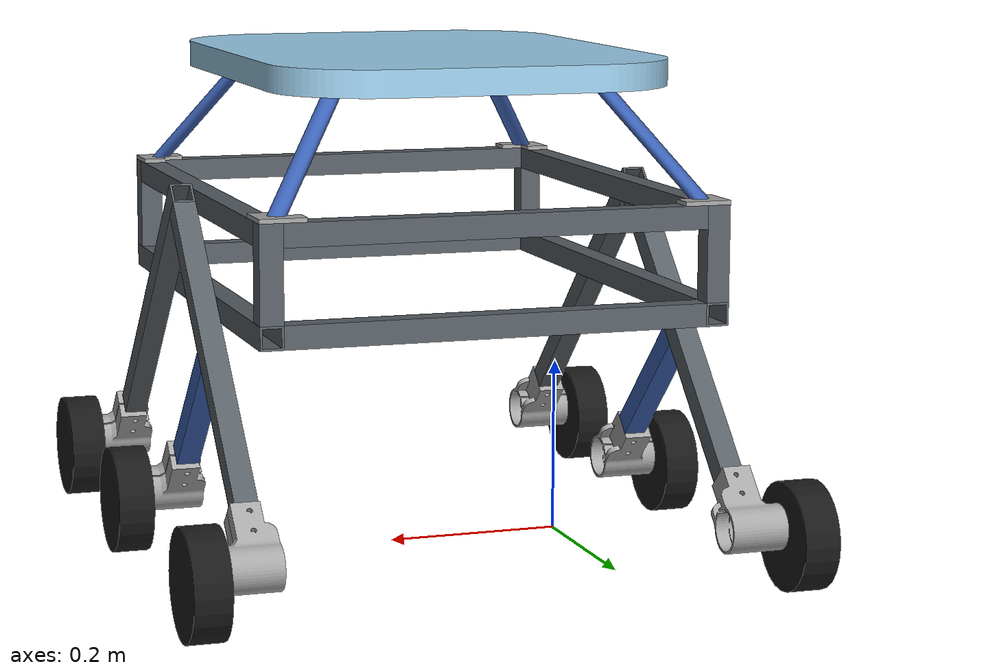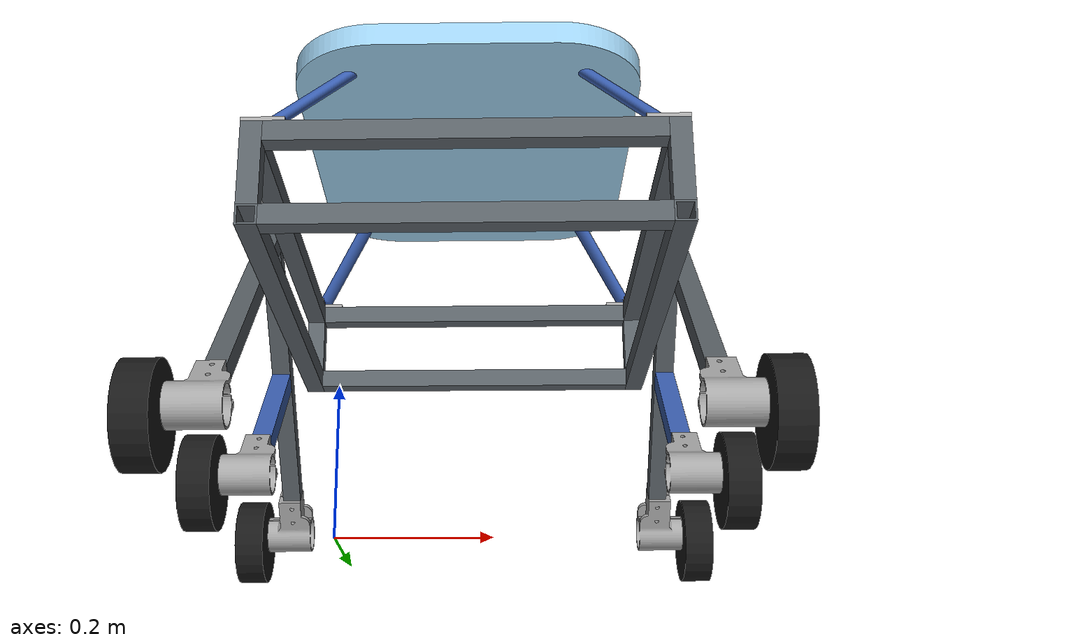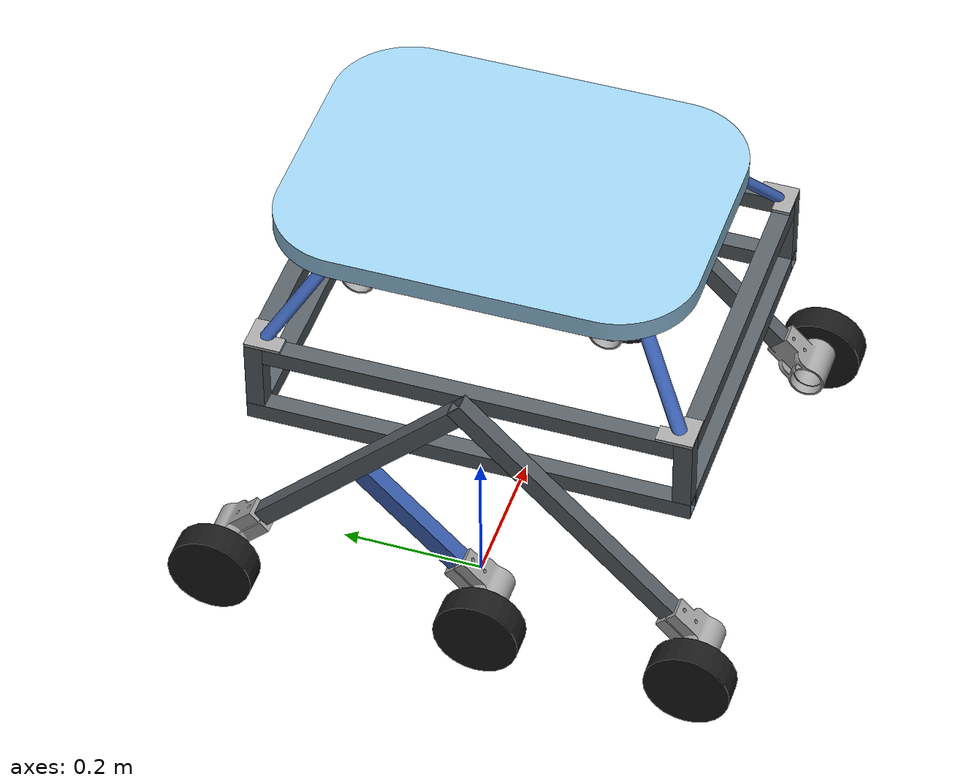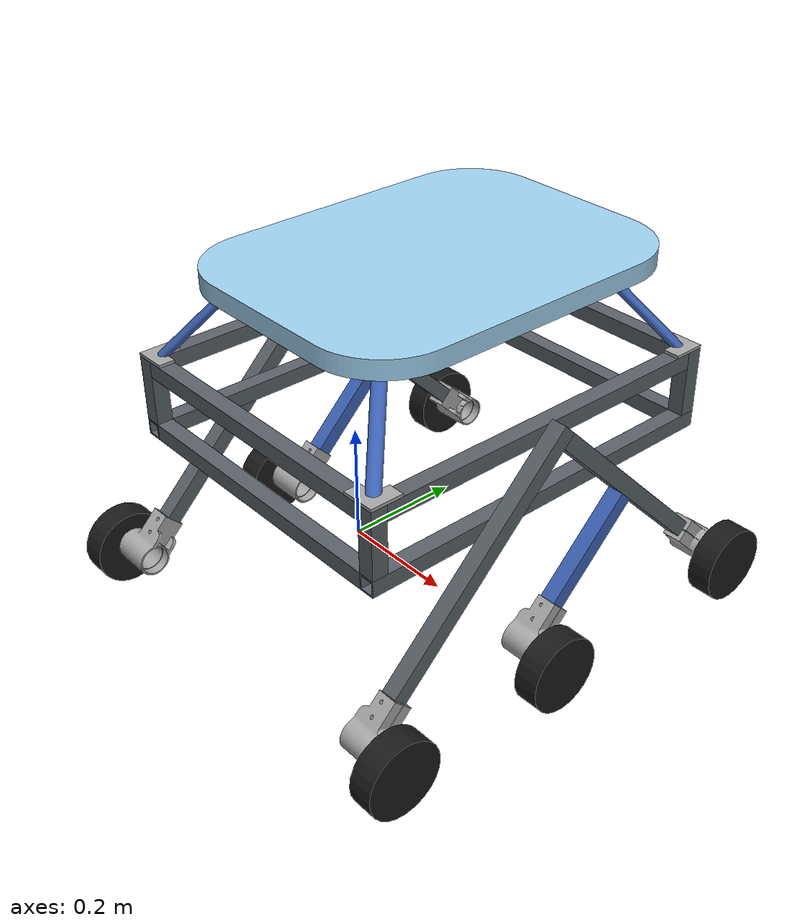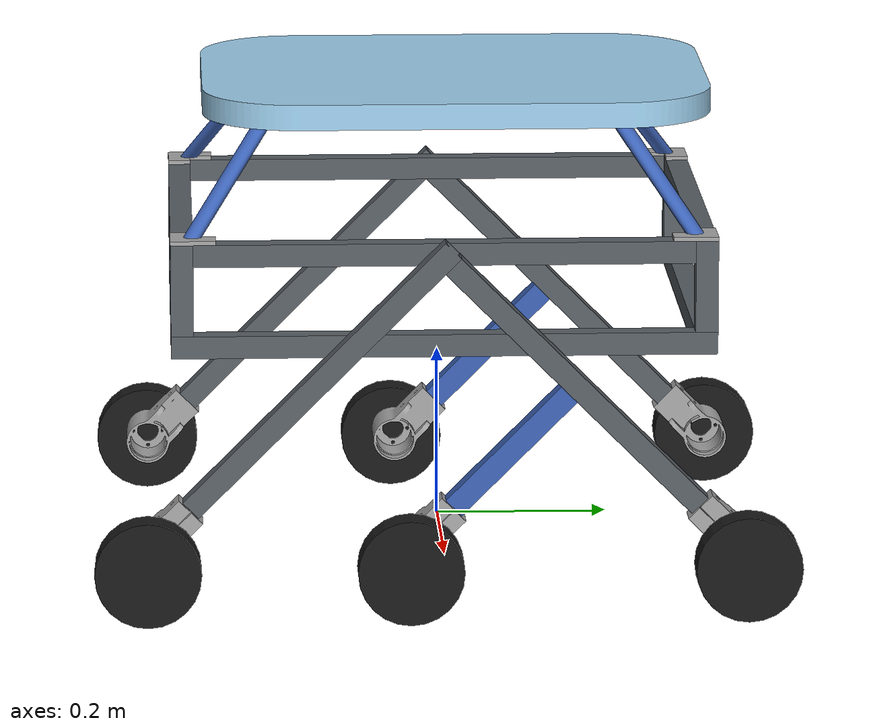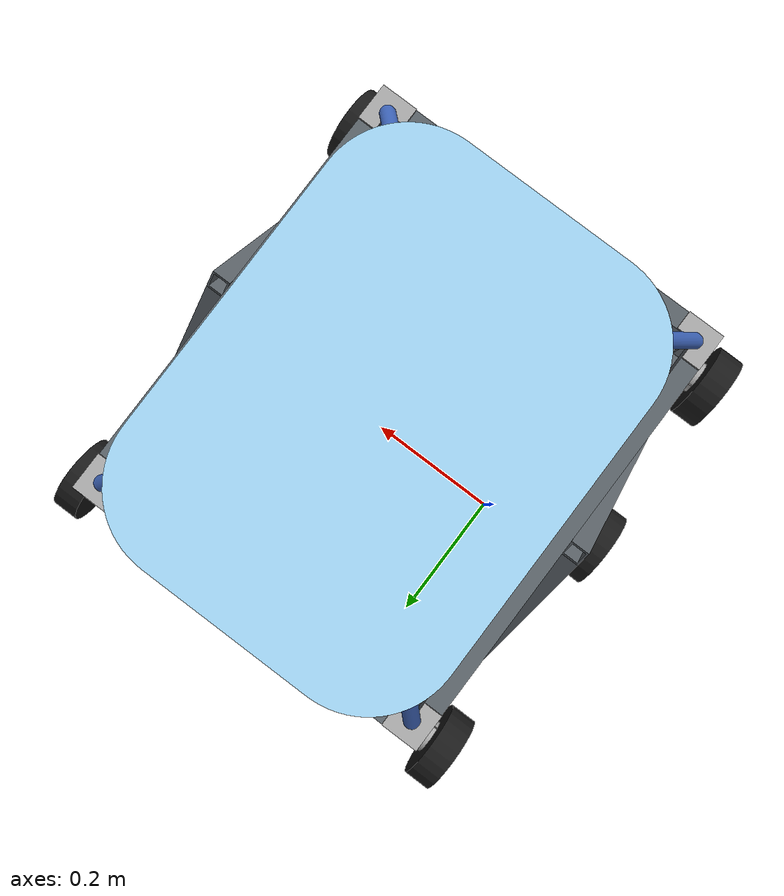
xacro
<?xml version="1.0"?>
<robot name="larry_robot"
  xmlns:xacro="http://www.ros.org/wiki/xacro">

  <xacro:arg name="use_sim" default="true"/>

  <xacro:property name="use_sim_val" value="$(arg use_sim)" />

  <xacro:include filename="larry_core.xacro" />
  <xacro:include filename="larry_wheels.xacro" />
  <xacro:include filename="larry.ros2_control.xacro" />

  <xacro:larry_core />

  <!-- Approximated values -->
  <xacro:build_wheel prefix="front_left" x="-0.16" y="-0.345" z="-0.35" />
  <xacro:build_wheel prefix="front_right" x="0.5" y="-0.345" z="-0.35" />

  <xacro:build_wheel prefix="mid_left" x="-0.16" y="-0.05" z="-0.35" />
  <xacro:build_wheel prefix="mid_right" x="0.5" y="-0.05" z="-0.35" />

  <xacro:build_wheel prefix="rear_left" x="-0.16" y="0.33" z="-0.35" />
  <xacro:build_wheel prefix="rear_right" x="0.5" y="0.33" z="-0.35" />

  <xacro:larry_ros2_control use_sim="${use_sim_val}" />
</robot>

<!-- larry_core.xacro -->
<robot xmlns:xacro="http://www.ros.org/wiki/xacro">
    <xacro:macro name="larry_core">

        <link name="base_link"/>

        <joint name="base_joint" type="fixed">
            <parent link="base_link"/>
            <child link="part_1"/>
            <origin xyz="0 0 0.41" rpy="0 0 0"/>
        </joint>

        <!-- Link part_1 -->
        <link name="part_1">
            <inertial>
                <origin xyz="0 0 0" rpy="0 0 0"/>
                <mass value="1e-09"/>
                <inertia ixx="1e-09" ixy="0" ixz="0" iyy="1e-09" iyz="0" izz="1e-09"/>
            </inertial>
            <!-- Part part_3 -->
            <visual>
                <origin xyz="-0.0658541 -0.0691416 -0.0314545" rpy="0 -0 -0"/>
                <geometry>
                    <mesh filename="package://larry_description/meshes/part_3.stl"/>
                </geometry>
                <material name="part_3_material">
                    <color rgba="0.34902 0.376471 0.4 1"/>
                </material>
            </visual>
            <collision>
                <origin xyz="-0.0658541 -0.0691416 -0.0314545" rpy="0 -0 -0"/>
                <geometry>
                    <mesh filename="package://larry_description/meshes/part_3.stl"/>
                </geometry>
            </collision>
            <!-- Part part_3_2 -->
            <visual>
                <origin xyz="-0.0063048 -0.0830358 -0.105757" rpy="0 0 -0"/>
                <geometry>
                    <mesh filename="package://larry_description/meshes/part_3__2.stl"/>
                </geometry>
                <material name="part_3_2_material">
                    <color rgba="0.231373 0.380392 0.705882 1"/>
                </material>
            </visual>
            <collision>
                <origin xyz="-0.0063048 -0.0830358 -0.105757" rpy="0 0 -0"/>
                <geometry>
                    <mesh filename="package://larry_description/meshes/part_3__2.stl"/>
                </geometry>
            </collision>
            <!-- Part part_1 -->
            <visual>
                <origin xyz="0.533445 -0.0830358 -0.105757" rpy="0 0 -0"/>
                <geometry>
                    <mesh filename="package://larry_description/meshes/part_1.stl"/>
                </geometry>
                <material name="part_1_material">
                    <color rgba="0.647059 0.647059 0.647059 1"/>
                </material>
            </visual>
            <collision>
                <origin xyz="0.533445 -0.0830358 -0.105757" rpy="0 0 -0"/>
                <geometry>
                    <mesh filename="package://larry_description/meshes/part_1.stl"/>
                </geometry>
            </collision>
            <!-- Part part_1_1 -->
            <visual>
                <origin xyz="-0.0658541 -0.0691416 -0.0314545" rpy="0 0 -0"/>
                <geometry>
                    <mesh filename="package://larry_description/meshes/part_1_1.stl"/>
                </geometry>
                <material name="part_1_1_material">
                    <color rgba="0.34902 0.376471 0.4 1"/>
                </material>
            </visual>
            <collision>
                <origin xyz="-0.0658541 -0.0691416 -0.0314545" rpy="0 0 -0"/>
                <geometry>
                    <mesh filename="package://larry_description/meshes/part_1_1.stl"/>
                </geometry>
            </collision>
            <!-- Part part_2_1 -->
            <visual>
                <origin xyz="-0.0658541 -0.0691416 -0.0314545" rpy="0 0 -0"/>
                <geometry>
                    <mesh filename="package://larry_description/meshes/part_2_1.stl"/>
                </geometry>
                <material name="part_2_1_material">
                    <color rgba="0.34902 0.376471 0.4 1"/>
                </material>
            </visual>
            <collision>
                <origin xyz="-0.0658541 -0.0691416 -0.0314545" rpy="0 0 -0"/>
                <geometry>
                    <mesh filename="package://larry_description/meshes/part_2_1.stl"/>
                </geometry>
            </collision>
            <!-- Part part_1_2 -->
            <visual>
                <origin xyz="-0.0063048 -0.0830358 -0.105757" rpy="0 0 -0"/>
                <geometry>
                    <mesh filename="package://larry_description/meshes/part_1__2.stl"/>
                </geometry>
                <material name="part_1_2_material">
                    <color rgba="0.34902 0.376471 0.4 1"/>
                </material>
            </visual>
            <collision>
                <origin xyz="-0.0063048 -0.0830358 -0.105757" rpy="0 0 -0"/>
                <geometry>
                    <mesh filename="package://larry_description/meshes/part_1__2.stl"/>
                </geometry>
            </collision>
            <!-- Part part_2_3 -->
            <visual>
                <origin xyz="-0.0658541 -0.0691416 -0.0314545" rpy="0 0 -0"/>
                <geometry>
                    <mesh filename="package://larry_description/meshes/part_2_3.stl"/>
                </geometry>
                <material name="part_2_3_material">
                    <color rgba="0.34902 0.376471 0.4 1"/>
                </material>
            </visual>
            <collision>
                <origin xyz="-0.0658541 -0.0691416 -0.0314545" rpy="0 0 -0"/>
                <geometry>
                    <mesh filename="package://larry_description/meshes/part_2_3.stl"/>
                </geometry>
            </collision>
            <!-- Part part_2 -->
            <visual>
                <origin xyz="-0.0063048 -0.0830358 -0.105757" rpy="0 0 -0"/>
                <geometry>
                    <mesh filename="package://larry_description/meshes/part_2.stl"/>
                </geometry>
                <material name="part_2_material">
                    <color rgba="0.34902 0.376471 0.4 1"/>
                </material>
            </visual>
            <collision>
                <origin xyz="-0.0063048 -0.0830358 -0.105757" rpy="0 0 -0"/>
                <geometry>
                    <mesh filename="package://larry_description/meshes/part_2.stl"/>
                </geometry>
            </collision>
            <!-- Part part_4 -->
            <visual>
                <origin xyz="-0.0658541 -0.0691416 -0.0314545" rpy="0 0 -0"/>
                <geometry>
                    <mesh filename="package://larry_description/meshes/part_4.stl"/>
                </geometry>
                <material name="part_4_material">
                    <color rgba="0.34902 0.376471 0.4 1"/>
                </material>
            </visual>
            <collision>
                <origin xyz="-0.0658541 -0.0691416 -0.0314545" rpy="0 0 -0"/>
                <geometry>
                    <mesh filename="package://larry_description/meshes/part_4.stl"/>
                </geometry>
            </collision>
            <!-- Part part_3_3 -->
            <visual>
                <origin xyz="0.533445 -0.0830358 -0.105757" rpy="0 0 -0"/>
                <geometry>
                    <mesh filename="package://larry_description/meshes/part_3__2.stl"/>
                </geometry>
                <material name="part_3_3_material">
                    <color rgba="0.231373 0.380392 0.705882 1"/>
                </material>
            </visual>
            <collision>
                <origin xyz="0.533445 -0.0830358 -0.105757" rpy="0 0 -0"/>
                <geometry>
                    <mesh filename="package://larry_description/meshes/part_3__2.stl"/>
                </geometry>
            </collision>
            <!-- Part part_1_3 -->
            <visual>
                <origin xyz="-0.190799 0.185764 -0.374556" rpy="1.5708 0 3.14159"/>
                <geometry>
                    <mesh filename="package://larry_description/meshes/part_1.stl"/>
                </geometry>
                <material name="part_1_3_material">
                    <color rgba="0.647059 0.647059 0.647059 1"/>
                </material>
            </visual>
            <collision>
                <origin xyz="-0.190799 0.185764 -0.374556" rpy="1.5708 0 3.14159"/>
                <geometry>
                    <mesh filename="package://larry_description/meshes/part_1.stl"/>
                </geometry>
            </collision>
            <!-- Part part_1_2 -->
            <visual>
                <origin xyz="0.533445 -0.0830358 -0.105757" rpy="0 0 -0"/>
                <geometry>
                    <mesh filename="package://larry_description/meshes/part_1_2.stl"/>
                </geometry>
                <material name="part_1_2_material">
                    <color rgba="0.647059 0.647059 0.647059 1"/>
                </material>
            </visual>
            <collision>
                <origin xyz="0.533445 -0.0830358 -0.105757" rpy="0 0 -0"/>
                <geometry>
                    <mesh filename="package://larry_description/meshes/part_1_2.stl"/>
                </geometry>
            </collision>
            <!-- Part part_3_4 -->
            <visual>
                <origin xyz="0.403098 0.248145 0.00849795" rpy="0 -0 1.5708"/>
                <geometry>
                    <mesh filename="package://larry_description/meshes/part_3__3.stl"/>
                </geometry>
                <material name="part_3_4_material">
                    <color rgba="0.231373 0.380392 0.705882 1"/>
                </material>
            </visual>
            <collision>
                <origin xyz="0.403098 0.248145 0.00849795" rpy="0 -0 1.5708"/>
                <geometry>
                    <mesh filename="package://larry_description/meshes/part_3__3.stl"/>
                </geometry>
            </collision>
            <!-- Part part_2_2 -->
            <visual>
                <origin xyz="0.403098 0.248145 0.00849795" rpy="0 -0 1.5708"/>
                <geometry>
                    <mesh filename="package://larry_description/meshes/part_2__2.stl"/>
                </geometry>
                <material name="part_2_2_material">
                    <color rgba="0.647059 0.647059 0.647059 1"/>
                </material>
            </visual>
            <collision>
                <origin xyz="0.403098 0.248145 0.00849795" rpy="0 -0 1.5708"/>
                <geometry>
                    <mesh filename="package://larry_description/meshes/part_2__2.stl"/>
                </geometry>
            </collision>
            <!-- Part part_1_1_2 -->
            <visual>
                <origin xyz="0.533445 -0.0830358 -0.105757" rpy="0 0 0"/>
                <geometry>
                    <mesh filename="package://larry_description/meshes/part_1_1__2.stl"/>
                </geometry>
                <material name="part_1_1_2_material">
                    <color rgba="0.647059 0.647059 0.647059 1"/>
                </material>
            </visual>
            <collision>
                <origin xyz="0.533445 -0.0830358 -0.105757" rpy="0 0 0"/>
                <geometry>
                    <mesh filename="package://larry_description/meshes/part_1_1__2.stl"/>
                </geometry>
            </collision>
            <!-- Part part_3_5 -->
            <visual>
                <origin xyz="0.377698 -0.291605 0.00849795" rpy="0 -0 0"/>
                <geometry>
                    <mesh filename="package://larry_description/meshes/part_3__3.stl"/>
                </geometry>
                <material name="part_3_5_material">
                    <color rgba="0.231373 0.380392 0.705882 1"/>
                </material>
            </visual>
            <collision>
                <origin xyz="0.377698 -0.291605 0.00849795" rpy="0 -0 0"/>
                <geometry>
                    <mesh filename="package://larry_description/meshes/part_3__3.stl"/>
                </geometry>
            </collision>
            <!-- Part part_2_3 -->
            <visual>
                <origin xyz="-0.0658541 -0.0691416 -0.0314545" rpy="0 0 -0"/>
                <geometry>
                    <mesh filename="package://larry_description/meshes/part_2__3.stl"/>
                </geometry>
                <material name="part_2_3_material">
                    <color rgba="0.34902 0.376471 0.4 1"/>
                </material>
            </visual>
            <collision>
                <origin xyz="-0.0658541 -0.0691416 -0.0314545" rpy="0 0 -0"/>
                <geometry>
                    <mesh filename="package://larry_description/meshes/part_2__3.stl"/>
                </geometry>
            </collision>
            <!-- Part part_1_4 -->
            <visual>
                <origin xyz="-0.0478 0.523595 0.130935" rpy="0 0 -0"/>
                <geometry>
                    <mesh filename="package://larry_description/meshes/part_1__3.stl"/>
                </geometry>
                <material name="part_1_4_material">
                    <color rgba="0.615686 0.811765 0.929412 1"/>
                </material>
            </visual>
            <collision>
                <origin xyz="-0.0478 0.523595 0.130935" rpy="0 0 -0"/>
                <geometry>
                    <mesh filename="package://larry_description/meshes/part_1__3.stl"/>
                </geometry>
            </collision>
            <!-- Part part_2_4 -->
            <visual>
                <origin xyz="0.377698 -0.291605 0.00849795" rpy="0 0 -0"/>
                <geometry>
                    <mesh filename="package://larry_description/meshes/part_2__2.stl"/>
                </geometry>
                <material name="part_2_4_material">
                    <color rgba="0.647059 0.647059 0.647059 1"/>
                </material>
            </visual>
            <collision>
                <origin xyz="0.377698 -0.291605 0.00849795" rpy="0 0 -0"/>
                <geometry>
                    <mesh filename="package://larry_description/meshes/part_2__2.stl"/>
                </geometry>
            </collision>
            <!-- Part part_2_5 -->
            <visual>
                <origin xyz="0.533445 -0.0830358 -0.105757" rpy="0 0 -0"/>
                <geometry>
                    <mesh filename="package://larry_description/meshes/part_2.stl"/>
                </geometry>
                <material name="part_2_5_material">
                    <color rgba="0.34902 0.376471 0.4 1"/>
                </material>
            </visual>
            <collision>
                <origin xyz="0.533445 -0.0830358 -0.105757" rpy="0 0 -0"/>
                <geometry>
                    <mesh filename="package://larry_description/meshes/part_2.stl"/>
                </geometry>
            </collision>
            <!-- Part part_2_6 -->
            <visual>
                <origin xyz="-0.035052 0.273545 0.00849795" rpy="-0 -0 3.14159"/>
                <geometry>
                    <mesh filename="package://larry_description/meshes/part_2__2.stl"/>
                </geometry>
                <material name="part_2_6_material">
                    <color rgba="0.647059 0.647059 0.647059 1"/>
                </material>
            </visual>
            <collision>
                <origin xyz="-0.035052 0.273545 0.00849795" rpy="-0 -0 3.14159"/>
                <geometry>
                    <mesh filename="package://larry_description/meshes/part_2__2.stl"/>
                </geometry>
            </collision>
            <!-- Part part_3_2 -->
            <visual>
                <origin xyz="-0.0658541 -0.0691416 -0.0314545" rpy="0 -0 -0"/>
                <geometry>
                    <mesh filename="package://larry_description/meshes/part_3_2.stl"/>
                </geometry>
                <material name="part_3_2_material">
                    <color rgba="0.34902 0.376471 0.4 1"/>
                </material>
            </visual>
            <collision>
                <origin xyz="-0.0658541 -0.0691416 -0.0314545" rpy="0 -0 -0"/>
                <geometry>
                    <mesh filename="package://larry_description/meshes/part_3_2.stl"/>
                </geometry>
            </collision>
            <!-- Part part_1_2_2 -->
            <visual>
                <origin xyz="-0.190799 -0.110585 -0.0782078" rpy="1.5708 0 3.14159"/>
                <geometry>
                    <mesh filename="package://larry_description/meshes/part_1_2.stl"/>
                </geometry>
                <material name="part_1_2_2_material">
                    <color rgba="0.647059 0.647059 0.647059 1"/>
                </material>
            </visual>
            <collision>
                <origin xyz="-0.190799 -0.110585 -0.0782078" rpy="1.5708 0 3.14159"/>
                <geometry>
                    <mesh filename="package://larry_description/meshes/part_1_2.stl"/>
                </geometry>
            </collision>
            <!-- Part part_2_7 -->
            <visual>
                <origin xyz="-0.060452 -0.266205 0.00849795" rpy="-0 0 -1.5708"/>
                <geometry>
                    <mesh filename="package://larry_description/meshes/part_2__2.stl"/>
                </geometry>
                <material name="part_2_7_material">
                    <color rgba="0.647059 0.647059 0.647059 1"/>
                </material>
            </visual>
            <collision>
                <origin xyz="-0.060452 -0.266205 0.00849795" rpy="-0 0 -1.5708"/>
                <geometry>
                    <mesh filename="package://larry_description/meshes/part_2__2.stl"/>
                </geometry>
            </collision>
            <!-- Part part_3_6 -->
            <visual>
                <origin xyz="-0.035052 0.273545 0.00849795" rpy="-0 -0 3.14159"/>
                <geometry>
                    <mesh filename="package://larry_description/meshes/part_3__3.stl"/>
                </geometry>
                <material name="part_3_6_material">
                    <color rgba="0.231373 0.380392 0.705882 1"/>
                </material>
            </visual>
            <collision>
                <origin xyz="-0.035052 0.273545 0.00849795" rpy="-0 -0 3.14159"/>
                <geometry>
                    <mesh filename="package://larry_description/meshes/part_3__3.stl"/>
                </geometry>
            </collision>
            <!-- Part part_1_5 -->
            <visual>
                <origin xyz="0.533445 -0.0830358 -0.105757" rpy="0 0 -0"/>
                <geometry>
                    <mesh filename="package://larry_description/meshes/part_1__2.stl"/>
                </geometry>
                <material name="part_1_5_material">
                    <color rgba="0.34902 0.376471 0.4 1"/>
                </material>
            </visual>
            <collision>
                <origin xyz="0.533445 -0.0830358 -0.105757" rpy="0 0 -0"/>
                <geometry>
                    <mesh filename="package://larry_description/meshes/part_1__2.stl"/>
                </geometry>
            </collision>
            <!-- Part part_1_6 -->
            <visual>
                <origin xyz="-0.0658541 -0.0691416 -0.0314545" rpy="0 0 -0"/>
                <geometry>
                    <mesh filename="package://larry_description/meshes/part_1__4.stl"/>
                </geometry>
                <material name="part_1_6_material">
                    <color rgba="0.34902 0.376471 0.4 1"/>
                </material>
            </visual>
            <collision>
                <origin xyz="-0.0658541 -0.0691416 -0.0314545" rpy="0 0 -0"/>
                <geometry>
                    <mesh filename="package://larry_description/meshes/part_1__4.stl"/>
                </geometry>
            </collision>
            <!-- Part part_3_7 -->
            <visual>
                <origin xyz="-0.060452 -0.266205 0.00849795" rpy="-0 0 -1.5708"/>
                <geometry>
                    <mesh filename="package://larry_description/meshes/part_3__3.stl"/>
                </geometry>
                <material name="part_3_7_material">
                    <color rgba="0.231373 0.380392 0.705882 1"/>
                </material>
            </visual>
            <collision>
                <origin xyz="-0.060452 -0.266205 0.00849795" rpy="-0 0 -1.5708"/>
                <geometry>
                    <mesh filename="package://larry_description/meshes/part_3__3.stl"/>
                </geometry>
            </collision>
            <!-- Part part_1_1_3 -->
            <visual>
                <origin xyz="-0.190799 0.0925248 0.0698037" rpy="-1.5708 0 3.14159"/>
                <geometry>
                    <mesh filename="package://larry_description/meshes/part_1_1__2.stl"/>
                </geometry>
                <material name="part_1_1_3_material">
                    <color rgba="0.647059 0.647059 0.647059 1"/>
                </material>
            </visual>
            <collision>
                <origin xyz="-0.190799 0.0925248 0.0698037" rpy="-1.5708 0 3.14159"/>
                <geometry>
                    <mesh filename="package://larry_description/meshes/part_1_1__2.stl"/>
                </geometry>
            </collision>
            <!-- Part part_3_3 -->
            <visual>
                <origin xyz="-0.0658541 -0.0691416 -0.0314545" rpy="0 -0 0"/>
                <geometry>
                    <mesh filename="package://larry_description/meshes/part_3_3.stl"/>
                </geometry>
                <material name="part_3_3_material">
                    <color rgba="0.34902 0.376471 0.4 1"/>
                </material>
            </visual>
            <collision>
                <origin xyz="-0.0658541 -0.0691416 -0.0314545" rpy="0 -0 0"/>
                <geometry>
                    <mesh filename="package://larry_description/meshes/part_3_3.stl"/>
                </geometry>
            </collision>
            <!-- Part part_4_1 -->
            <visual>
                <origin xyz="-0.0658541 -0.0691416 -0.0314545" rpy="0 0 -0"/>
                <geometry>
                    <mesh filename="package://larry_description/meshes/part_4_1.stl"/>
                </geometry>
                <material name="part_4_1_material">
                    <color rgba="0.34902 0.376471 0.4 1"/>
                </material>
            </visual>
            <collision>
                <origin xyz="-0.0658541 -0.0691416 -0.0314545" rpy="0 0 -0"/>
                <geometry>
                    <mesh filename="package://larry_description/meshes/part_4_1.stl"/>
                </geometry>
            </collision>
            <!-- Part part_2_2 -->
            <visual>
                <origin xyz="-0.0658541 -0.0691416 -0.0314545" rpy="0 0 -0"/>
                <geometry>
                    <mesh filename="package://larry_description/meshes/part_2_2.stl"/>
                </geometry>
                <material name="part_2_2_material">
                    <color rgba="0.34902 0.376471 0.4 1"/>
                </material>
            </visual>
            <collision>
                <origin xyz="-0.0658541 -0.0691416 -0.0314545" rpy="0 0 -0"/>
                <geometry>
                    <mesh filename="package://larry_description/meshes/part_2_2.stl"/>
                </geometry>
            </collision>
            <!-- Part part_3_1 -->
            <visual>
                <origin xyz="-0.0658541 -0.0691416 -0.0314545" rpy="0 0 -0"/>
                <geometry>
                    <mesh filename="package://larry_description/meshes/part_3_1.stl"/>
                </geometry>
                <material name="part_3_1_material">
                    <color rgba="0.34902 0.376471 0.4 1"/>
                </material>
            </visual>
            <collision>
                <origin xyz="-0.0658541 -0.0691416 -0.0314545" rpy="0 0 -0"/>
                <geometry>
                    <mesh filename="package://larry_description/meshes/part_3_1.stl"/>
                </geometry>
            </collision>
        </link>

    </xacro:macro>
</robot>

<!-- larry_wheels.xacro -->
<robot xmlns:xacro="http://www.ros.org/wiki/xacro">

    <material name="black">
        <color rgba="0.1 0.1 0.1 1.0"/>
    </material>

    <xacro:macro name="build_wheel" params="prefix x y z">

        <link name="${prefix}_wheel_link">
            <visual>
                <origin xyz="0 0 0" rpy="0 1.5708 0"/>
                <geometry>
                    <cylinder radius="0.06" length="0.04"/>
                </geometry>
                <material name="black"/>
            </visual>
            <collision>
                <origin xyz="0 0 0" rpy="0 1.5708 0"/>
                <geometry>
                    <cylinder radius="0.06" length="0.04"/>
                </geometry>
            </collision>
            <inertial>
                <origin xyz="0 0 0" rpy="0 1.5708 0"/>
                <mass value="0.5"/>
                <inertia ixx="0.0009" ixy="0.0" ixz="0.0" iyy="0.000516" iyz="0.0" izz="0.000516"/>
            </inertial>
        </link>

        <joint name="${prefix}_wheel_joint" type="continuous">
            <parent link="part_1"/>
            <child link="${prefix}_wheel_link"/>
            <origin xyz="${x} ${y} ${z}" rpy="0 0 0"/>
            <axis xyz="1 0 0"/>
            <dynamics damping="0.1" friction="0.1"/>
        </joint>

        <gazebo reference="${prefix}_wheel_link">
            <material>Gazebo/Black</material>
        </gazebo>

    </xacro:macro>
</robot>
